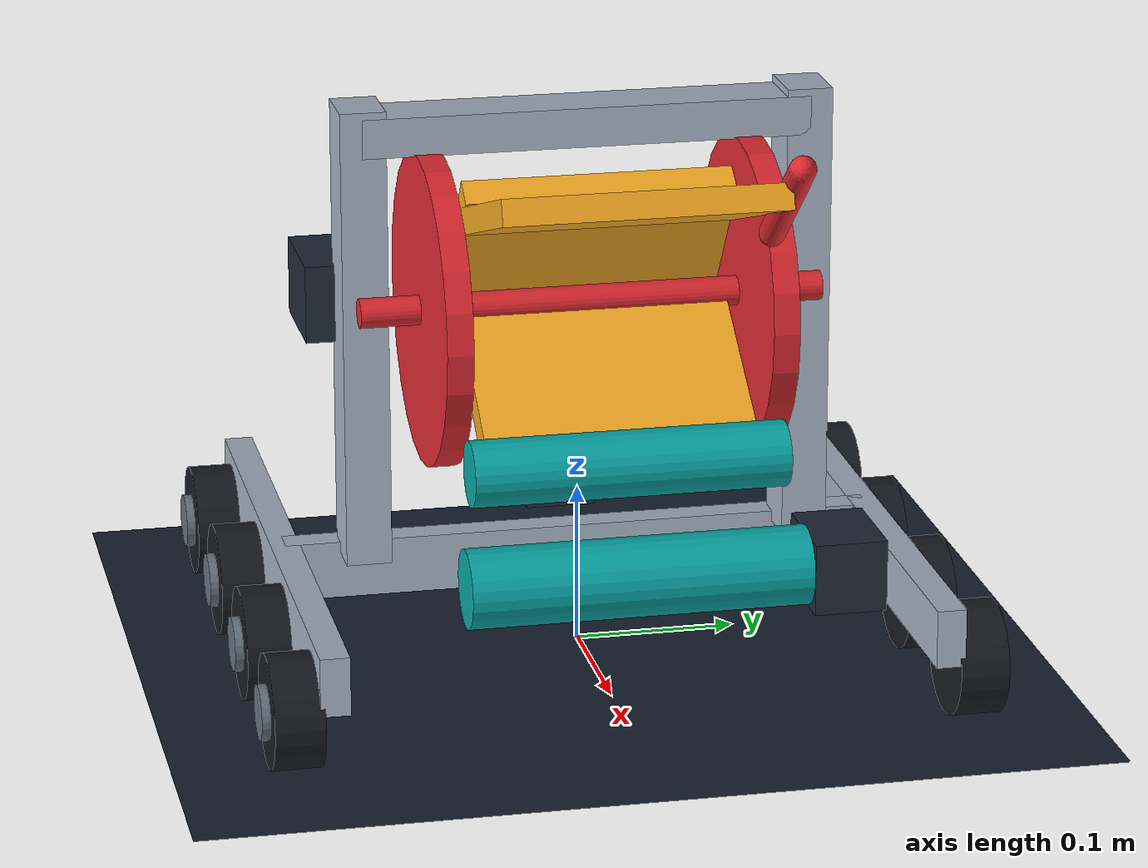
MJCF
<mujoco model="Rotary Pin Indexing Drum"><compiler angle="degree" /><visual><global offwidth="800" offheight="600" /><quality offsamples="0" /><headlight ambient=".45 .45 .45" /></visual><worldbody><light pos="0 -1 3" castshadow="false" /><geom type="plane" size="2 2 .1" rgba=".09 .13 .18 1" /><geom type="box" pos="0 -0.185 0.059925" size="0.2 0.009 0.018" euler="0 0 0" rgba=".65 .7 .76 1" contype="0" conaffinity="0" /><geom type="box" pos="0 0.185 0.059925" size="0.2 0.009 0.018" euler="0 0 0" rgba=".65 .7 .76 1" contype="0" conaffinity="0" /><geom type="box" pos="0 0 0.059925" size="0.009 0.185 0.018" euler="0 0 0" rgba=".65 .7 .76 1" contype="0" conaffinity="0" /><geom type="cylinder" pos="-0.1675 -0.206 0.034925" size="0.034925 0.015" euler="90 0 0" rgba=".08 .1 .13 1" contype="0" conaffinity="0" /><geom type="cylinder" pos="-0.1675 -0.223 0.034925" size="0.016763999999999998 0.003" euler="90 0 0" rgba=".4 .45 .5 1" contype="0" conaffinity="0" /><geom type="cylinder" pos="-0.05583333333333333 -0.206 0.034925" size="0.034925 0.015" euler="90 0 0" rgba=".08 .1 .13 1" contype="0" conaffinity="0" /><geom type="cylinder" pos="-0.05583333333333333 -0.223 0.034925" size="0.016763999999999998 0.003" euler="90 0 0" rgba=".4 .45 .5 1" contype="0" conaffinity="0" /><geom type="cylinder" pos="0.055833333333333346 -0.206 0.034925" size="0.034925 0.015" euler="90 0 0" rgba=".08 .1 .13 1" contype="0" conaffinity="0" /><geom type="cylinder" pos="0.055833333333333346 -0.223 0.034925" size="0.016763999999999998 0.003" euler="90 0 0" rgba=".4 .45 .5 1" contype="0" conaffinity="0" /><geom type="cylinder" pos="0.1675 -0.206 0.034925" size="0.034925 0.015" euler="90 0 0" rgba=".08 .1 .13 1" contype="0" conaffinity="0" /><geom type="cylinder" pos="0.1675 -0.223 0.034925" size="0.016763999999999998 0.003" euler="90 0 0" rgba=".4 .45 .5 1" contype="0" conaffinity="0" /><geom type="cylinder" pos="-0.1675 0.206 0.034925" size="0.034925 0.015" euler="90 0 0" rgba=".08 .1 .13 1" contype="0" conaffinity="0" /><geom type="cylinder" pos="-0.1675 0.223 0.034925" size="0.016763999999999998 0.003" euler="90 0 0" rgba=".4 .45 .5 1" contype="0" conaffinity="0" /><geom type="cylinder" pos="-0.05583333333333333 0.206 0.034925" size="0.034925 0.015" euler="90 0 0" rgba=".08 .1 .13 1" contype="0" conaffinity="0" /><geom type="cylinder" pos="-0.05583333333333333 0.223 0.034925" size="0.016763999999999998 0.003" euler="90 0 0" rgba=".4 .45 .5 1" contype="0" conaffinity="0" /><geom type="cylinder" pos="0.055833333333333346 0.206 0.034925" size="0.034925 0.015" euler="90 0 0" rgba=".08 .1 .13 1" contype="0" conaffinity="0" /><geom type="cylinder" pos="0.055833333333333346 0.223 0.034925" size="0.016763999999999998 0.003" euler="90 0 0" rgba=".4 .45 .5 1" contype="0" conaffinity="0" /><geom type="cylinder" pos="0.1675 0.206 0.034925" size="0.034925 0.015" euler="90 0 0" rgba=".08 .1 .13 1" contype="0" conaffinity="0" /><geom type="cylinder" pos="0.1675 0.223 0.034925" size="0.016763999999999998 0.003" euler="90 0 0" rgba=".4 .45 .5 1" contype="0" conaffinity="0" /><geom type="box" pos="-0.12 0.0 0.084925" size="0.07 0.022 0.015" euler="0 0 0" rgba=".12 .16 .21 1" contype="0" conaffinity="0" /><geom type="box" pos="0.015 0.137 0.214" size="0.019 0.014 0.1425" euler="0.0 0.0 0.0" rgba=".65 .7 .76 1" contype="0" conaffinity="0" /><geom type="box" pos="0.015 -0.137 0.214" size="0.019 0.014 0.1425" euler="0.0 0.0 0.0" rgba=".65 .7 .76 1" contype="0" conaffinity="0" /><geom type="box" pos="0.015 0.0 0.34" size="0.019 0.1375 0.012" euler="0.0 0.0 0.0" rgba=".65 .7 .76 1" contype="0" conaffinity="0" /><geom type="cylinder" pos="0.042 0.0 0.235" size="0.009 0.1425" euler="90.0 0.0 0.0" rgba=".87 .16 .19 1" contype="0" conaffinity="0" /><geom type="cylinder" pos="0.042 0.098 0.235" size="0.095 0.008" euler="90.0 0.0 0.0" rgba=".87 .16 .19 1" contype="0" conaffinity="0" /><geom type="cylinder" pos="0.042 -0.098 0.235" size="0.095 0.008" euler="90.0 0.0 0.0" rgba=".87 .16 .19 1" contype="0" conaffinity="0" /><geom type="box" pos="0.094 0.0 0.19" size="0.059 0.0825 0.009" euler="0.0 35.0 0.0" rgba=".96 .66 .13 1" contype="0" conaffinity="0" /><geom type="box" pos="0.035 0.0 0.27" size="0.0525 0.0825 0.009" euler="0.0 -55.0 0.0" rgba=".96 .66 .13 1" contype="0" conaffinity="0" /><geom type="cylinder" pos="0.17 0.0 0.103" size="0.024 0.1025" euler="90.0 0.0 0.0" rgba=".03 .65 .65 1" contype="0" conaffinity="0" /><geom type="cylinder" pos="0.145 0.0 0.165" size="0.02 0.095" euler="90.0 0.0 0.0" rgba=".03 .65 .65 1" contype="0" conaffinity="0" /><geom type="box" pos="0.126 0.0 0.315" size="0.075 0.085 0.008" euler="0.0 -18.0 0.0" rgba=".96 .66 .13 1" contype="0" conaffinity="0" /><geom type="capsule" pos="0.17 0.088 0.327" size="0.008 0.0445" euler="0.0 50.0 0.0" rgba=".87 .16 .19 1" contype="0" conaffinity="0" /><geom type="box" pos="-0.03 -0.145 0.23" size="0.034 0.024 0.024" euler="0.0 0.0 0.0" rgba=".12 .16 .21 1" contype="0" conaffinity="0" /><geom type="box" pos="0.136 0.132 0.09" size="0.03 0.022 0.022" euler="0.0 0.0 0.0" rgba=".12 .16 .21 1" contype="0" conaffinity="0" /></worldbody></mujoco>
